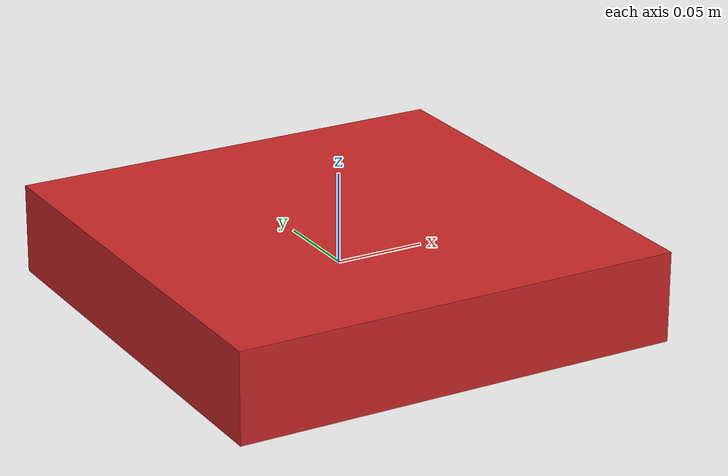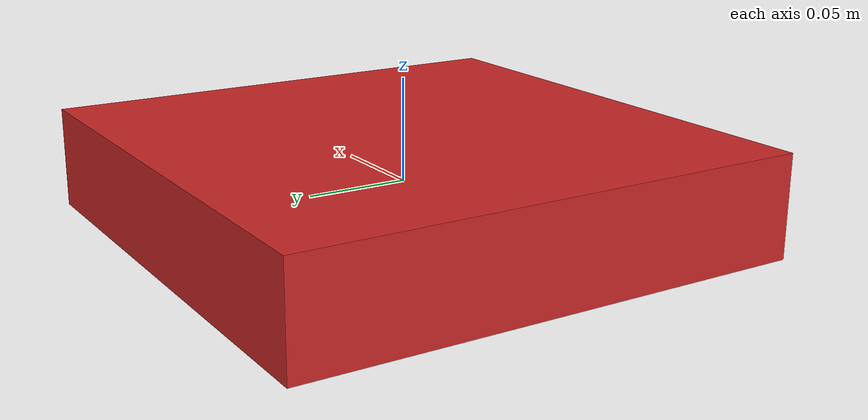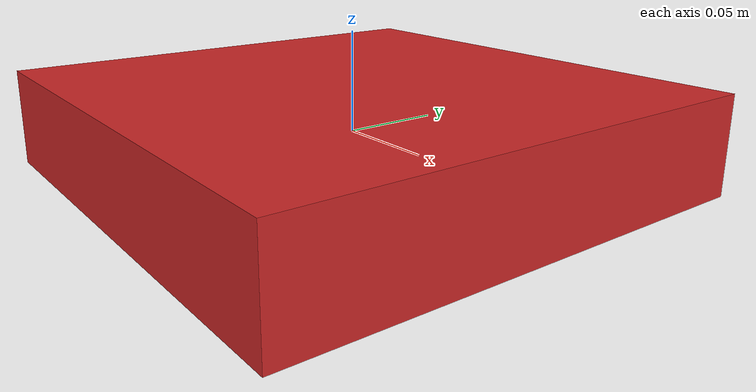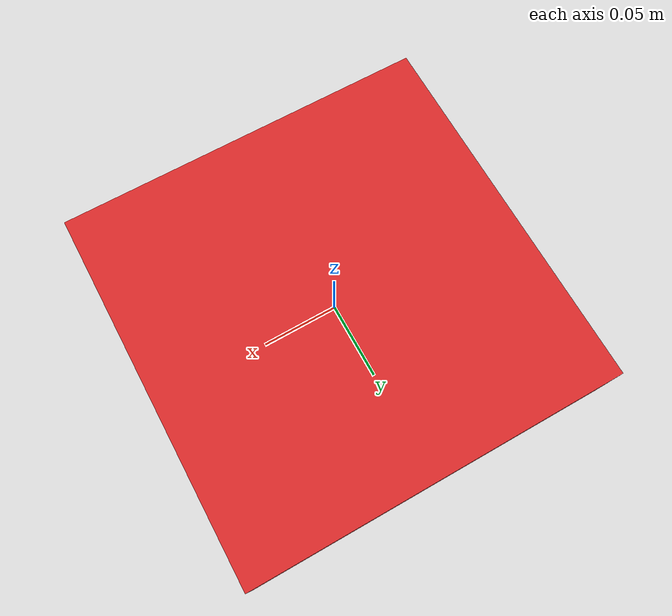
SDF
<?xml version="1.0" ?>
<sdf version="1.5">
  <model name="red_square">
    <static>true</static>
    <link name="link">
      <collision name="collision">
        <geometry>
          <box>
            <normal>0 0 1</normal>
            <size>0.25 0.25 0.05</size>
          </box>
        </geometry>
        <surface>
          <friction>
            <ode>
              <mu>100</mu>
              <mu2>50</mu2>
            </ode>
          </friction>
        </surface>
      </collision>
      <visual name="visual">
        <cast_shadows>false</cast_shadows>
        <geometry>
          <box>
            <normal>0 0 1</normal>
            <size>0.25 0.25 0.05</size>
          </box>
        </geometry>
        <material>
          <script>
            <uri>file://media/materials/scripts/gazebo.material</uri>
            <name>Gazebo/Red</name>
          </script>
        </material>
      </visual>
    </link>
  </model>
</sdf>
